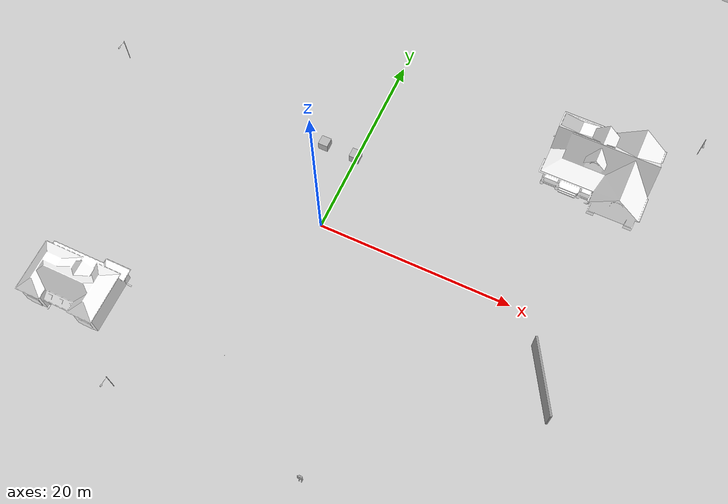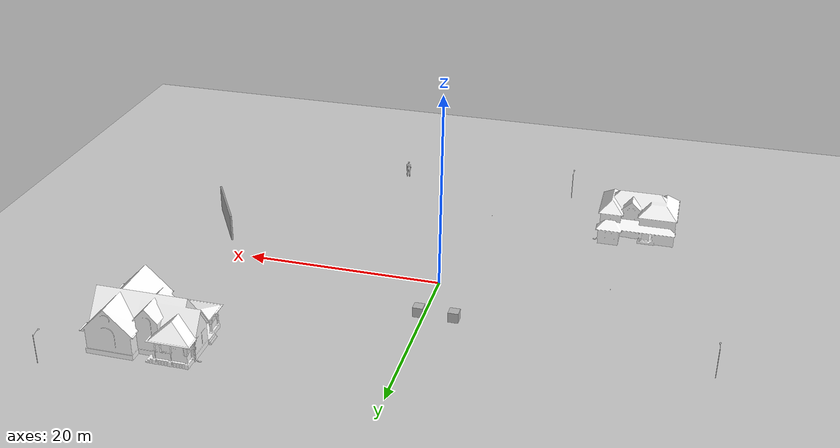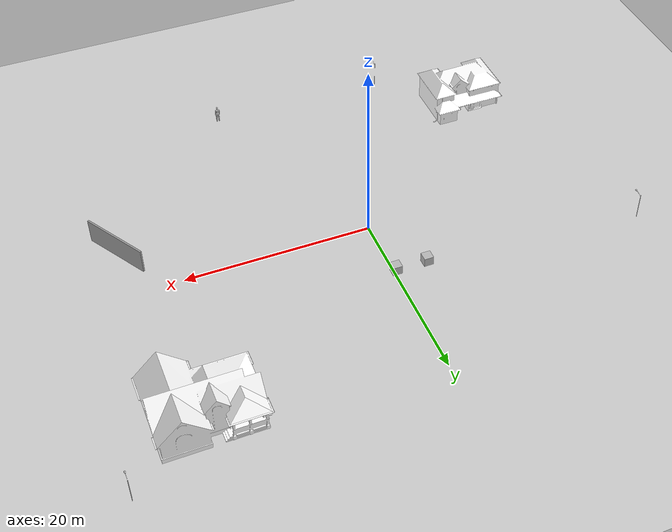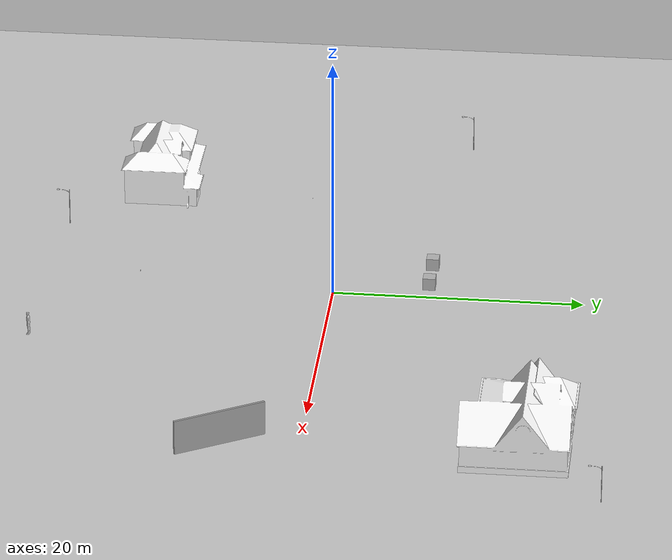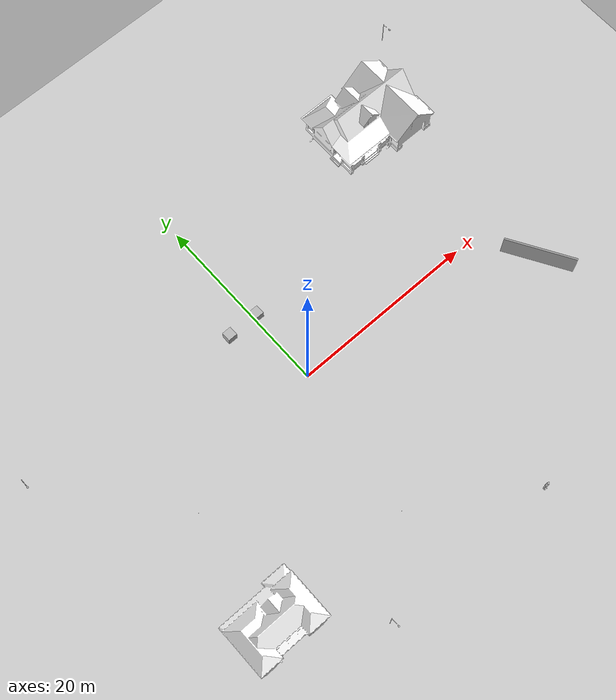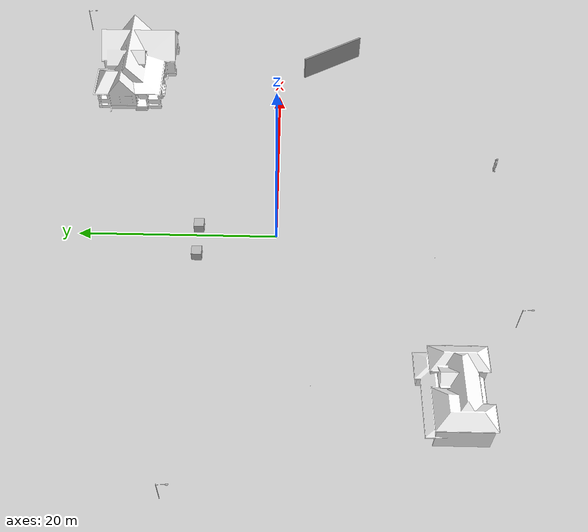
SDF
<sdf version="1.6">
 <world name="default">
  <light name="sun" type="directional">
   <pose>0 0 10 0 -0 0</pose>
   <diffuse>0.8 0.8 0.8 1</diffuse>
   <specular>0.1 0.1 0.1 1</specular>
   <attenuation>
    <range>1000</range>
    <constant>0.9</constant>
    <linear>0.01</linear>
    <quadratic>0.001</quadratic>
   </attenuation>
   <direction>-0.5 0.5 -1</direction>
  </light>
  <model name="ground_plane">
   <static>1</static>
   <link name="link">
    <collision name="collision">
     <geometry><plane><normal>0 0 1</normal><size>100 100</size></plane></geometry>
     <surface><friction><ode><mu>100</mu><mu2>50</mu2></ode></friction></surface>
    </collision>
    <visual name="visual">
     <cast_shadows>0</cast_shadows>
     <geometry><plane><normal>0 0 1</normal><size>100 100</size></plane></geometry>
     <material>
      <script><uri>file://media/materials/scripts/gazebo.material</uri><name>Gazebo/Grey</name></script>
     </material>
    </visual>
   </link>
  </model>
  <gravity>0 0 -9.8</gravity>
  <magnetic_field>6e-06 2.3e-05 -4.2e-05</magnetic_field>
  <atmosphere type="adiabatic"/>
  <physics name="default_physics" default="0" type="ode">
   <max_step_size>0.001</max_step_size>
   <real_time_factor>1</real_time_factor>
   <real_time_update_rate>1000</real_time_update_rate>
  </physics>
  <scene><ambient>0.4 0.4 0.4 1</ambient><background>0.7 0.7 0.7 1</background><shadows>1</shadows></scene>
  <spherical_coordinates>
   <surface_model>EARTH_WGS84</surface_model>
   <latitude_deg>0</latitude_deg>
   <longitude_deg>0</longitude_deg>
   <elevation>0</elevation>
   <heading_deg>0</heading_deg>
  </spherical_coordinates>
  <model name="brick_box_3x1x3">
   <static>1</static>
   <link name="chassis">
    <pose>0 0 1.5 0 -0 0</pose>
    <collision name="collision"><geometry><box><size>3 1 3</size></box></geometry></collision>
    <visual name="visual">
     <geometry><mesh><uri>model://brick_box_3x1x3/meshes/simple_box.dae</uri><scale>1 1 1</scale></mesh></geometry>
     <material>
      <script>
       <uri>model://brick_box_3x1x3/materials/scripts</uri>
       <uri>model://brick_box_3x1x3/materials/textures</uri>
       <name>BrickBox/Diffuse</name>
      </script>
     </material>
    </visual>
   </link>
   <pose>0.159792 7.72531 0 0 -0 0</pose>
  </model>
  <model name="brick_box_3x1x3_0">
   <static>1</static>
   <link name="chassis">
    <pose>0 0 1.5 0 -0 0</pose>
    <collision name="collision"><geometry><box><size>3 1 3</size></box></geometry></collision>
    <visual name="visual">
     <geometry><mesh><uri>model://brick_box_3x1x3/meshes/simple_box.dae</uri><scale>1 1 1</scale></mesh></geometry>
     <material>
      <script>
       <uri>model://brick_box_3x1x3/materials/scripts</uri>
       <uri>model://brick_box_3x1x3/materials/textures</uri>
       <name>BrickBox/Diffuse</name>
      </script>
     </material>
    </visual>
   </link>
   <pose>-3.23358 7.72772 0 0 -0 0</pose>
  </model>
  <model name="grey_wall">
   <static>1</static>
   <link name="link">
    <pose>0 0 1.4 0 -0 0</pose>
    <collision name="collision"><geometry><box><size>7.5 0.2 2.8</size></box></geometry></collision>
    <visual name="visual">
     <cast_shadows>0</cast_shadows>
     <geometry><box><size>7.5 0.2 2.8</size></box></geometry>
     <material>
      <script>
       <uri>model://grey_wall/materials/scripts</uri>
       <uri>model://grey_wall/materials/textures</uri>
       <name>vrc/grey_wall</name>
      </script>
     </material>
    </visual>
   </link>
   <pose>25.2994 -6.02565 0 0 0 -1.03117</pose>
  </model>
  <model name="House 1">
   <static>1</static>
   <link name="link">
    <collision name="collision">
     <geometry><mesh><uri>model://house_1/meshes/house_1.dae</uri><scale>1 1 1</scale></mesh></geometry>
    </collision>
    <visual name="visual">
     <geometry><mesh><uri>model://house_1/meshes/house_1.dae</uri><scale>1 1 1</scale></mesh></geometry>
     <material>
      <script>
       <uri>model://house_1/materials/scripts</uri>
       <uri>model://house_1/materials/textures</uri>
       <name>House_1/Diffuse</name>
      </script>
      <shader type="normal_map_object_space"><normal_map>House_1_Normal.png</normal_map></shader>
     </material>
    </visual>
   </link>
   <pose>22.9691 16.7233 0 0 -0 0</pose>
  </model>
  <model name="House 2">
   <static>1</static>
   <link name="link">
    <collision name="collision">
     <geometry><mesh><uri>model://house_2/meshes/house_2.dae</uri><scale>1 1 1</scale></mesh></geometry>
    </collision>
    <visual name="visual">
     <geometry><mesh><uri>model://house_2/meshes/house_2.dae</uri><scale>1 1 1</scale></mesh></geometry>
     <material>
      <script>
       <uri>model://house_2/materials/scripts</uri>
       <uri>model://house_2/materials/textures</uri>
       <uri>model://house_1/materials/textures</uri>
       <name>House_2/Diffuse</name>
      </script>
      <shader type="normal_map_object_space">
       <normal_map>model://house_1/materials/textures/House_1_Normal.png</normal_map>
      </shader>
     </material>
    </visual>
   </link>
   <pose>-18.6738 -16.1595 0 0 -0 0</pose>
  </model>
  <model name="Lamp Post">
   <static>1</static>
   <link name="link">
    <collision name="collision">
     <geometry><mesh><uri>model://lamp_post/meshes/lamp_post.dae</uri><scale>1 1 1</scale></mesh></geometry>
    </collision>
    <visual name="visual">
     <geometry><mesh><uri>model://lamp_post/meshes/lamp_post.dae</uri><scale>1 1 1</scale></mesh></geometry>
    </visual>
   </link>
   <pose>-10.0882 -22.624 0 0 -0 0</pose>
  </model>
  <model name="Lamp Post_0">
   <static>1</static>
   <link name="link">
    <collision name="collision">
     <geometry><mesh><uri>model://lamp_post/meshes/lamp_post.dae</uri><scale>1 1 1</scale></mesh></geometry>
    </collision>
    <visual name="visual">
     <geometry><mesh><uri>model://lamp_post/meshes/lamp_post.dae</uri><scale>1 1 1</scale></mesh></geometry>
    </visual>
   </link>
   <pose>31.2061 23.2028 0 0 -0 0</pose>
  </model>
  <model name="Lamp Post_1">
   <static>1</static>
   <link name="link">
    <collision name="collision">
     <geometry><mesh><uri>model://lamp_post/meshes/lamp_post.dae</uri><scale>1 1 1</scale></mesh></geometry>
    </collision>
    <visual name="visual">
     <geometry><mesh><uri>model://lamp_post/meshes/lamp_post.dae</uri><scale>1 1 1</scale></mesh></geometry>
    </visual>
   </link>
   <pose>-27.0067 9.10799 0 0 -0 0</pose>
  </model>
  <model name="person_standing">
   <link name="link">
    <inertial>
     <pose>0 -0.1 0.95 0 -0 0</pose>
     <mass>80</mass>
     <inertia><ixx>24.88</ixx><ixy>0</ixy><ixz>0</ixz><iyy>25.73</iyy><iyz>0</iyz><izz>2.48</izz></inertia>
    </inertial>
    <collision name="bottom">
     <pose>0 -0.1 0.01 0 -0 0</pose>
     <geometry><box><size>0.5 0.35 0.02</size></box></geometry>
    </collision>
    <collision name="person">
     <pose>0 0 0.02 0.04 -0 0</pose>
     <geometry><mesh><uri>model://person_standing/meshes/standing.dae</uri><scale>1 1 1</scale></mesh></geometry>
    </collision>
    <visual name="visual">
     <pose>0 0 0.02 0.04 -0 0</pose>
     <geometry><mesh><uri>model://person_standing/meshes/standing.dae</uri><scale>1 1 1</scale></mesh></geometry>
    </visual>
   </link>
   <pose>9.30591 -22.9879 -0 1e-06 -1e-06 -0.00095</pose>
  </model>
  <model name="Construction Cone">
   <link name="link">
    <collision name="collision">
     <geometry>
      <mesh><scale>1 1 1</scale><uri>model://construction_cone/meshes/construction_cone.dae</uri></mesh>
     </geometry>
    </collision>
    <visual name="visual">
     <geometry>
      <mesh><scale>1 1 1</scale><uri>model://construction_cone/meshes/construction_cone.dae</uri></mesh>
     </geometry>
    </visual>
    <inertial>
     <inertia><ixx>1</ixx><ixy>0</ixy><ixz>0</ixz><iyy>1</iyy><iyz>0</iyz><izz>1</izz></inertia>
     <mass>1</mass>
    </inertial>
   </link>
   <pose>-16.5608 -3.37285 -0 0 -0 0</pose>
  </model>
  <model name="Construction Cone_0">
   <link name="link">
    <collision name="collision">
     <geometry>
      <mesh><scale>1 1 1</scale><uri>model://construction_cone/meshes/construction_cone.dae</uri></mesh>
     </geometry>
    </collision>
    <visual name="visual">
     <geometry>
      <mesh><scale>1 1 1</scale><uri>model://construction_cone/meshes/construction_cone.dae</uri></mesh>
     </geometry>
    </visual>
    <inertial>
     <inertia><ixx>1</ixx><ixy>0</ixy><ixz>0</ixz><iyy>1</iyy><iyz>0</iyz><izz>1</izz></inertia>
     <mass>1</mass>
    </inertial>
   </link>
   <pose>-2.25405 -15.7614 -0 0 -1e-06 0</pose>
  </model>
 </world>
</sdf>
